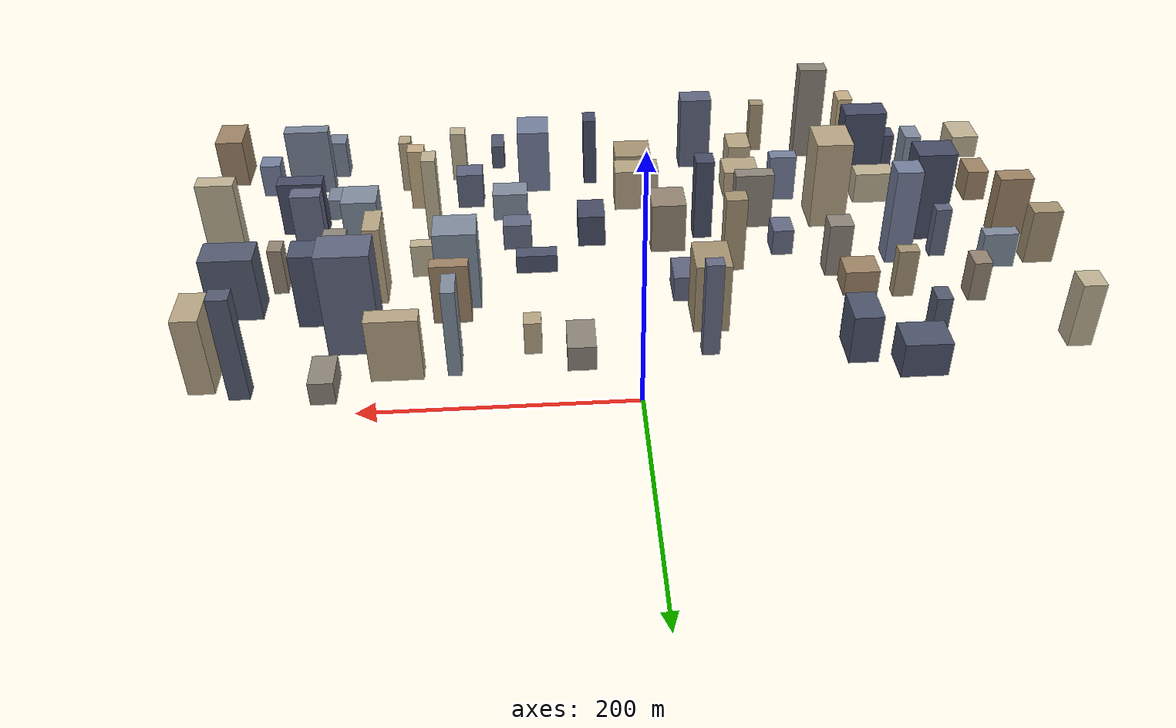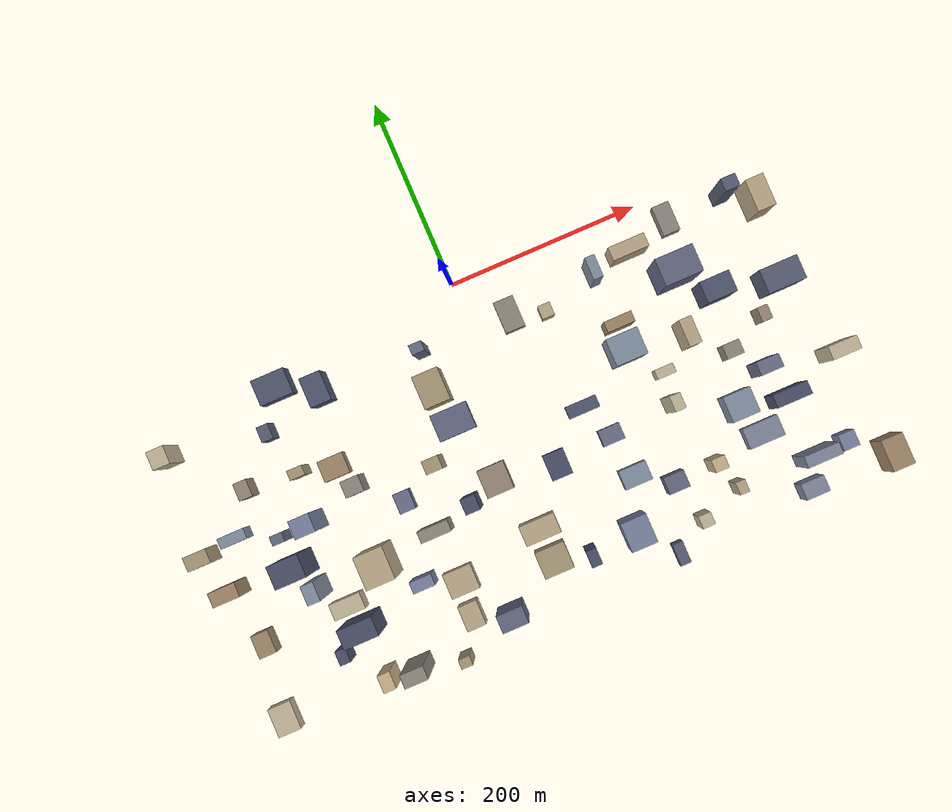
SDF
<sdf version="1.9">
 <model name="city_buildings">
  <static>true</static>
  <model name="b1">
   <static>true</static>
   <pose>-67.2 -209.9 36.0 0 0 0</pose>
   <link name="link">
    <collision name="c"><geometry><box><size>15 16 72</size></box></geometry></collision>
    <visual name="v">
     <geometry><box><size>15 16 72</size></box></geometry>
     <material>
      <ambient>0.28 0.30 0.40 1</ambient>
      <diffuse>0.28 0.30 0.40 1</diffuse>
      <specular>0.62 0.64 0.68 1</specular>
     </material>
    </visual>
   </link>
  </model>
  <model name="b4">
   <static>true</static>
   <pose>253.0 -201.2 28.8 0 0 0</pose>
   <link name="link">
    <collision name="c"><geometry><box><size>24 14 58</size></box></geometry></collision>
    <visual name="v">
     <geometry><box><size>24 14 58</size></box></geometry>
     <material>
      <ambient>0.40 0.42 0.52 1</ambient>
      <diffuse>0.40 0.42 0.52 1</diffuse>
      <specular>0.50 0.52 0.56 1</specular>
     </material>
    </visual>
   </link>
  </model>
  <model name="b6">
   <static>true</static>
   <pose>40.6 -52.4 10.5 0 0 0</pose>
   <link name="link">
    <collision name="c"><geometry><box><size>21 33 21</size></box></geometry></collision>
    <visual name="v">
     <geometry><box><size>21 33 21</size></box></geometry>
     <material>
      <ambient>0.55 0.52 0.48 1</ambient>
      <diffuse>0.55 0.52 0.48 1</diffuse>
      <specular>0.18 0.18 0.16 1</specular>
     </material>
    </visual>
   </link>
  </model>
  <model name="b8">
   <static>true</static>
   <pose>173.3 -40.8 26.4 0 0 0</pose>
   <link name="link">
    <collision name="c"><geometry><box><size>38 14 53</size></box></geometry></collision>
    <visual name="v">
     <geometry><box><size>38 14 53</size></box></geometry>
     <material>
      <ambient>0.72 0.65 0.52 1</ambient>
      <diffuse>0.72 0.65 0.52 1</diffuse>
      <specular>0.12 0.10 0.08 1</specular>
     </material>
    </visual>
   </link>
  </model>
  <model name="b9">
   <static>true</static>
   <pose>-324.1 -333.7 10.5 0 0 0</pose>
   <link name="link">
    <collision name="c"><geometry><box><size>24 30 21</size></box></geometry></collision>
    <visual name="v">
     <geometry><box><size>24 30 21</size></box></geometry>
     <material>
      <ambient>0.75 0.70 0.58 1</ambient>
      <diffuse>0.75 0.70 0.58 1</diffuse>
      <specular>0.12 0.11 0.09 1</specular>
     </material>
    </visual>
   </link>
  </model>
  <model name="b10">
   <static>true</static>
   <pose>92.4 -250.0 12.6 0 0 0</pose>
   <link name="link">
    <collision name="c"><geometry><box><size>29 20 25</size></box></geometry></collision>
    <visual name="v">
     <geometry><box><size>29 20 25</size></box></geometry>
     <material>
      <ambient>0.50 0.55 0.62 1</ambient>
      <diffuse>0.50 0.55 0.62 1</diffuse>
      <specular>0.45 0.48 0.52 1</specular>
     </material>
    </visual>
   </link>
  </model>
  <model name="b12">
   <static>true</static>
   <pose>227.6 -261.6 9.6 0 0 0</pose>
   <link name="link">
    <collision name="c"><geometry><box><size>38 22 19</size></box></geometry></collision>
    <visual name="v">
     <geometry><box><size>38 22 19</size></box></geometry>
     <material>
      <ambient>0.48 0.52 0.60 1</ambient>
      <diffuse>0.48 0.52 0.60 1</diffuse>
      <specular>0.50 0.52 0.55 1</specular>
     </material>
    </visual>
   </link>
  </model>
  <model name="b13">
   <static>true</static>
   <pose>75.6 -64.2 14.0 0 0 0</pose>
   <link name="link">
    <collision name="c"><geometry><box><size>13 14 28</size></box></geometry></collision>
    <visual name="v">
     <geometry><box><size>13 14 28</size></box></geometry>
     <material>
      <ambient>0.72 0.65 0.52 1</ambient>
      <diffuse>0.72 0.65 0.52 1</diffuse>
      <specular>0.12 0.10 0.08 1</specular>
     </material>
    </visual>
   </link>
  </model>
  <model name="b15">
   <static>true</static>
   <pose>-299.3 -148.6 15.6 0 0 0</pose>
   <link name="link">
    <collision name="c"><geometry><box><size>28 11 31</size></box></geometry></collision>
    <visual name="v">
     <geometry><box><size>28 11 31</size></box></geometry>
     <material>
      <ambient>0.50 0.55 0.62 1</ambient>
      <diffuse>0.50 0.55 0.62 1</diffuse>
      <specular>0.45 0.48 0.52 1</specular>
     </material>
    </visual>
   </link>
  </model>
  <model name="b18">
   <static>true</static>
   <pose>131.5 -130.2 34.2 0 0 0</pose>
   <link name="link">
    <collision name="c"><geometry><box><size>33 28 68</size></box></geometry></collision>
    <visual name="v">
     <geometry><box><size>33 28 68</size></box></geometry>
     <material>
      <ambient>0.50 0.55 0.62 1</ambient>
      <diffuse>0.50 0.55 0.62 1</diffuse>
      <specular>0.45 0.48 0.52 1</specular>
     </material>
    </visual>
   </link>
  </model>
  <model name="b20">
   <static>true</static>
   <pose>-16.0 -260.9 18.4 0 0 0</pose>
   <link name="link">
    <collision name="c"><geometry><box><size>37 21 37</size></box></geometry></collision>
    <visual name="v">
     <geometry><box><size>37 21 37</size></box></geometry>
     <material>
      <ambient>0.72 0.65 0.52 1</ambient>
      <diffuse>0.72 0.65 0.52 1</diffuse>
      <specular>0.12 0.10 0.08 1</specular>
     </material>
    </visual>
   </link>
  </model>
  <model name="b22">
   <static>true</static>
   <pose>-213.9 -114.2 20.8 0 0 0</pose>
   <link name="link">
    <collision name="c"><geometry><box><size>16 10 42</size></box></geometry></collision>
    <visual name="v">
     <geometry><box><size>16 10 42</size></box></geometry>
     <material>
      <ambient>0.65 0.58 0.45 1</ambient>
      <diffuse>0.65 0.58 0.45 1</diffuse>
      <specular>0.10 0.09 0.07 1</specular>
     </material>
    </visual>
   </link>
  </model>
  <model name="b23">
   <static>true</static>
   <pose>325.3 -214.7 31.5 0 0 0</pose>
   <link name="link">
    <collision name="c"><geometry><box><size>30 14 63</size></box></geometry></collision>
    <visual name="v">
     <geometry><box><size>30 14 63</size></box></geometry>
     <material>
      <ambient>0.75 0.70 0.58 1</ambient>
      <diffuse>0.75 0.70 0.58 1</diffuse>
      <specular>0.12 0.11 0.09 1</specular>
     </material>
    </visual>
   </link>
  </model>
  <model name="b28">
   <static>true</static>
   <pose>-209.8 -335.6 29.3 0 0 0</pose>
   <link name="link">
    <collision name="c"><geometry><box><size>13 18 59</size></box></geometry></collision>
    <visual name="v">
     <geometry><box><size>13 18 59</size></box></geometry>
     <material>
      <ambient>0.78 0.68 0.52 1</ambient>
      <diffuse>0.78 0.68 0.52 1</diffuse>
      <specular>0.10 0.09 0.07 1</specular>
     </material>
    </visual>
   </link>
  </model>
  <model name="b29">
   <static>true</static>
   <pose>-58.3 -91.5 29.6 0 0 0</pose>
   <link name="link">
    <collision name="c"><geometry><box><size>27 34 59</size></box></geometry></collision>
    <visual name="v">
     <geometry><box><size>27 34 59</size></box></geometry>
     <material>
      <ambient>0.65 0.58 0.45 1</ambient>
      <diffuse>0.65 0.58 0.45 1</diffuse>
      <specular>0.10 0.09 0.07 1</specular>
     </material>
    </visual>
   </link>
  </model>
  <model name="b30">
   <static>true</static>
   <pose>-214.2 -279.9 37.1 0 0 0</pose>
   <link name="link">
    <collision name="c"><geometry><box><size>36 20 74</size></box></geometry></collision>
    <visual name="v">
     <geometry><box><size>36 20 74</size></box></geometry>
     <material>
      <ambient>0.28 0.30 0.40 1</ambient>
      <diffuse>0.28 0.30 0.40 1</diffuse>
      <specular>0.62 0.64 0.68 1</specular>
     </material>
    </visual>
   </link>
  </model>
  <model name="b32">
   <static>true</static>
   <pose>-204.7 -25.8 14.4 0 0 0</pose>
   <link name="link">
    <collision name="c"><geometry><box><size>35 27 29</size></box></geometry></collision>
    <visual name="v">
     <geometry><box><size>35 27 29</size></box></geometry>
     <material>
      <ambient>0.30 0.33 0.42 1</ambient>
      <diffuse>0.30 0.33 0.42 1</diffuse>
      <specular>0.60 0.62 0.65 1</specular>
     </material>
    </visual>
   </link>
  </model>
  <model name="b38">
   <static>true</static>
   <pose>170.4 -270.5 27.9 0 0 0</pose>
   <link name="link">
    <collision name="c"><geometry><box><size>14 13 56</size></box></geometry></collision>
    <visual name="v">
     <geometry><box><size>14 13 56</size></box></geometry>
     <material>
      <ambient>0.78 0.68 0.52 1</ambient>
      <diffuse>0.78 0.68 0.52 1</diffuse>
      <specular>0.10 0.09 0.07 1</specular>
     </material>
    </visual>
   </link>
  </model>
  <model name="b40">
   <static>true</static>
   <pose>-111.9 -313.0 14.5 0 0 0</pose>
   <link name="link">
    <collision name="c"><geometry><box><size>20 26 29</size></box></geometry></collision>
    <visual name="v">
     <geometry><box><size>20 26 29</size></box></geometry>
     <material>
      <ambient>0.72 0.65 0.52 1</ambient>
      <diffuse>0.72 0.65 0.52 1</diffuse>
      <specular>0.12 0.10 0.08 1</specular>
     </material>
    </visual>
   </link>
  </model>
  <model name="b42">
   <static>true</static>
   <pose>263.5 -237.0 24.1 0 0 0</pose>
   <link name="link">
    <collision name="c"><geometry><box><size>37 14 48</size></box></geometry></collision>
    <visual name="v">
     <geometry><box><size>37 14 48</size></box></geometry>
     <material>
      <ambient>0.28 0.30 0.40 1</ambient>
      <diffuse>0.28 0.30 0.40 1</diffuse>
      <specular>0.62 0.64 0.68 1</specular>
     </material>
    </visual>
   </link>
  </model>
  <model name="b43">
   <static>true</static>
   <pose>-143.0 -263.5 20.8 0 0 0</pose>
   <link name="link">
    <collision name="c"><geometry><box><size>23 12 42</size></box></geometry></collision>
    <visual name="v">
     <geometry><box><size>23 12 42</size></box></geometry>
     <material>
      <ambient>0.46 0.50 0.62 1</ambient>
      <diffuse>0.46 0.50 0.62 1</diffuse>
      <specular>0.48 0.50 0.55 1</specular>
     </material>
    </visual>
   </link>
  </model>
  <model name="b44">
   <static>true</static>
   <pose>-86.3 -160.5 32.8 0 0 0</pose>
   <link name="link">
    <collision name="c"><geometry><box><size>17 14 66</size></box></geometry></collision>
    <visual name="v">
     <geometry><box><size>17 14 66</size></box></geometry>
     <material>
      <ambient>0.65 0.58 0.45 1</ambient>
      <diffuse>0.65 0.58 0.45 1</diffuse>
      <specular>0.10 0.09 0.07 1</specular>
     </material>
    </visual>
   </link>
  </model>
  <model name="b45">
   <static>true</static>
   <pose>-228.1 -65.6 17.2 0 0 0</pose>
   <link name="link">
    <collision name="c"><geometry><box><size>12 16 34</size></box></geometry></collision>
    <visual name="v">
     <geometry><box><size>12 16 34</size></box></geometry>
     <material>
      <ambient>0.33 0.36 0.44 1</ambient>
      <diffuse>0.33 0.36 0.44 1</diffuse>
      <specular>0.55 0.58 0.62 1</specular>
     </material>
    </visual>
   </link>
  </model>
  <model name="b52">
   <static>true</static>
   <pose>-180.9 -123.2 11.1 0 0 0</pose>
   <link name="link">
    <collision name="c"><geometry><box><size>27 22 22</size></box></geometry></collision>
    <visual name="v">
     <geometry><box><size>27 22 22</size></box></geometry>
     <material>
      <ambient>0.62 0.52 0.40 1</ambient>
      <diffuse>0.62 0.52 0.40 1</diffuse>
      <specular>0.12 0.10 0.08 1</specular>
     </material>
    </visual>
   </link>
  </model>
  <model name="b53">
   <static>true</static>
   <pose>310.3 -44.3 32.4 0 0 0</pose>
   <link name="link">
    <collision name="c"><geometry><box><size>19 33 65</size></box></geometry></collision>
    <visual name="v">
     <geometry><box><size>19 33 65</size></box></geometry>
     <material>
      <ambient>0.72 0.65 0.52 1</ambient>
      <diffuse>0.72 0.65 0.52 1</diffuse>
      <specular>0.12 0.10 0.08 1</specular>
     </material>
    </visual>
   </link>
  </model>
  <model name="b55">
   <static>true</static>
   <pose>-270.1 -108.8 17.3 0 0 0</pose>
   <link name="link">
    <collision name="c"><geometry><box><size>14 18 35</size></box></geometry></collision>
    <visual name="v">
     <geometry><box><size>14 18 35</size></box></geometry>
     <material>
      <ambient>0.58 0.52 0.45 1</ambient>
      <diffuse>0.58 0.52 0.45 1</diffuse>
      <specular>0.14 0.12 0.10 1</specular>
     </material>
    </visual>
   </link>
  </model>
  <model name="b57">
   <static>true</static>
   <pose>-242.6 -298.2 20.4 0 0 0</pose>
   <link name="link">
    <collision name="c"><geometry><box><size>11 15 41</size></box></geometry></collision>
    <visual name="v">
     <geometry><box><size>11 15 41</size></box></geometry>
     <material>
      <ambient>0.28 0.30 0.40 1</ambient>
      <diffuse>0.28 0.30 0.40 1</diffuse>
      <specular>0.62 0.64 0.68 1</specular>
     </material>
    </visual>
   </link>
  </model>
  <model name="b58">
   <static>true</static>
   <pose>182.4 -300.7 23.8 0 0 0</pose>
   <link name="link">
    <collision name="c"><geometry><box><size>10 13 48</size></box></geometry></collision>
    <visual name="v">
     <geometry><box><size>10 13 48</size></box></geometry>
     <material>
      <ambient>0.70 0.64 0.52 1</ambient>
      <diffuse>0.70 0.64 0.52 1</diffuse>
      <specular>0.13 0.11 0.09 1</specular>
     </material>
    </visual>
   </link>
  </model>
  <model name="b59">
   <static>true</static>
   <pose>21.8 -304.9 30.8 0 0 0</pose>
   <link name="link">
    <collision name="c"><geometry><box><size>11 17 62</size></box></geometry></collision>
    <visual name="v">
     <geometry><box><size>11 17 62</size></box></geometry>
     <material>
      <ambient>0.28 0.30 0.40 1</ambient>
      <diffuse>0.28 0.30 0.40 1</diffuse>
      <specular>0.62 0.64 0.68 1</specular>
     </material>
    </visual>
   </link>
  </model>
  <model name="b61">
   <static>true</static>
   <pose>71.3 -166.7 8.2 0 0 0</pose>
   <link name="link">
    <collision name="c"><geometry><box><size>33 13 16</size></box></geometry></collision>
    <visual name="v">
     <geometry><box><size>33 13 16</size></box></geometry>
     <material>
      <ambient>0.30 0.33 0.42 1</ambient>
      <diffuse>0.30 0.33 0.42 1</diffuse>
      <specular>0.60 0.62 0.65 1</specular>
     </material>
    </visual>
   </link>
  </model>
  <model name="b62">
   <static>true</static>
   <pose>300.6 -125.4 27.5 0 0 0</pose>
   <link name="link">
    <collision name="c"><geometry><box><size>40 25 55</size></box></geometry></collision>
    <visual name="v">
     <geometry><box><size>40 25 55</size></box></geometry>
     <material>
      <ambient>0.33 0.36 0.44 1</ambient>
      <diffuse>0.33 0.36 0.44 1</diffuse>
      <specular>0.55 0.58 0.62 1</specular>
     </material>
    </visual>
   </link>
  </model>
  <model name="b63">
   <static>true</static>
   <pose>137.6 -316.7 22.9 0 0 0</pose>
   <link name="link">
    <collision name="c"><geometry><box><size>13 13 46</size></box></geometry></collision>
    <visual name="v">
     <geometry><box><size>13 13 46</size></box></geometry>
     <material>
      <ambient>0.75 0.70 0.58 1</ambient>
      <diffuse>0.75 0.70 0.58 1</diffuse>
      <specular>0.12 0.11 0.09 1</specular>
     </material>
    </visual>
   </link>
  </model>
  <model name="b66">
   <static>true</static>
   <pose>-221.8 -255.6 14.1 0 0 0</pose>
   <link name="link">
    <collision name="c"><geometry><box><size>33 17 28</size></box></geometry></collision>
    <visual name="v">
     <geometry><box><size>33 17 28</size></box></geometry>
     <material>
      <ambient>0.75 0.70 0.58 1</ambient>
      <diffuse>0.75 0.70 0.58 1</diffuse>
      <specular>0.12 0.11 0.09 1</specular>
     </material>
    </visual>
   </link>
  </model>
  <model name="b70">
   <static>true</static>
   <pose>229.9 -173.4 18.1 0 0 0</pose>
   <link name="link">
    <collision name="c"><geometry><box><size>18 15 36</size></box></geometry></collision>
    <visual name="v">
     <geometry><box><size>18 15 36</size></box></geometry>
     <material>
      <ambient>0.55 0.52 0.48 1</ambient>
      <diffuse>0.55 0.52 0.48 1</diffuse>
      <specular>0.18 0.18 0.16 1</specular>
     </material>
    </visual>
   </link>
  </model>
  <model name="b71">
   <static>true</static>
   <pose>71.3 -300.6 29.0 0 0 0</pose>
   <link name="link">
    <collision name="c"><geometry><box><size>27 30 58</size></box></geometry></collision>
    <visual name="v">
     <geometry><box><size>27 30 58</size></box></geometry>
     <material>
      <ambient>0.46 0.50 0.62 1</ambient>
      <diffuse>0.46 0.50 0.62 1</diffuse>
      <specular>0.48 0.50 0.55 1</specular>
     </material>
    </visual>
   </link>
  </model>
  <model name="b72">
   <static>true</static>
   <pose>-54.5 -52.0 40.1 0 0 0</pose>
   <link name="link">
    <collision name="c"><geometry><box><size>13 10 80</size></box></geometry></collision>
    <visual name="v">
     <geometry><box><size>13 10 80</size></box></geometry>
     <material>
      <ambient>0.40 0.42 0.52 1</ambient>
      <diffuse>0.40 0.42 0.52 1</diffuse>
      <specular>0.50 0.52 0.56 1</specular>
     </material>
    </visual>
   </link>
  </model>
  <model name="b73">
   <static>true</static>
   <pose>193.7 -140.9 34.1 0 0 0</pose>
   <link name="link">
    <collision name="c"><geometry><box><size>13 28 68</size></box></geometry></collision>
    <visual name="v">
     <geometry><box><size>13 28 68</size></box></geometry>
     <material>
      <ambient>0.72 0.65 0.52 1</ambient>
      <diffuse>0.72 0.65 0.52 1</diffuse>
      <specular>0.12 0.10 0.08 1</specular>
     </material>
    </visual>
   </link>
  </model>
  <model name="b78">
   <static>true</static>
   <pose>-239.7 -227.1 40.0 0 0 0</pose>
   <link name="link">
    <collision name="c"><geometry><box><size>13 20 80</size></box></geometry></collision>
    <visual name="v">
     <geometry><box><size>13 20 80</size></box></geometry>
     <material>
      <ambient>0.50 0.55 0.62 1</ambient>
      <diffuse>0.50 0.55 0.62 1</diffuse>
      <specular>0.45 0.48 0.52 1</specular>
     </material>
    </visual>
   </link>
  </model>
  <model name="b80">
   <static>true</static>
   <pose>-255.8 -166.8 22.1 0 0 0</pose>
   <link name="link">
    <collision name="c"><geometry><box><size>13 10 44</size></box></geometry></collision>
    <visual name="v">
     <geometry><box><size>13 10 44</size></box></geometry>
     <material>
      <ambient>0.38 0.40 0.50 1</ambient>
      <diffuse>0.38 0.40 0.50 1</diffuse>
      <specular>0.52 0.54 0.58 1</specular>
     </material>
    </visual>
   </link>
  </model>
  <model name="b81">
   <static>true</static>
   <pose>250.0 -331.1 16.8 0 0 0</pose>
   <link name="link">
    <collision name="c"><geometry><box><size>25 17 34</size></box></geometry></collision>
    <visual name="v">
     <geometry><box><size>25 17 34</size></box></geometry>
     <material>
      <ambient>0.48 0.52 0.60 1</ambient>
      <diffuse>0.48 0.52 0.60 1</diffuse>
      <specular>0.50 0.52 0.55 1</specular>
     </material>
    </visual>
   </link>
  </model>
  <model name="b82">
   <static>true</static>
   <pose>-164.4 -46.1 20.5 0 0 0</pose>
   <link name="link">
    <collision name="c"><geometry><box><size>22 31 41</size></box></geometry></collision>
    <visual name="v">
     <geometry><box><size>22 31 41</size></box></geometry>
     <material>
      <ambient>0.30 0.33 0.42 1</ambient>
      <diffuse>0.30 0.33 0.42 1</diffuse>
      <specular>0.60 0.62 0.65 1</specular>
     </material>
    </visual>
   </link>
  </model>
  <model name="b83">
   <static>true</static>
   <pose>152.8 -198.4 44.4 0 0 0</pose>
   <link name="link">
    <collision name="c"><geometry><box><size>11 16 89</size></box></geometry></collision>
    <visual name="v">
     <geometry><box><size>11 16 89</size></box></geometry>
     <material>
      <ambient>0.75 0.70 0.58 1</ambient>
      <diffuse>0.75 0.70 0.58 1</diffuse>
      <specular>0.12 0.11 0.09 1</specular>
     </material>
    </visual>
   </link>
  </model>
  <model name="b86">
   <static>true</static>
   <pose>25.4 -209.4 14.2 0 0 0</pose>
   <link name="link">
    <collision name="c"><geometry><box><size>22 27 28</size></box></geometry></collision>
    <visual name="v">
     <geometry><box><size>22 27 28</size></box></geometry>
     <material>
      <ambient>0.28 0.30 0.40 1</ambient>
      <diffuse>0.28 0.30 0.40 1</diffuse>
      <specular>0.62 0.64 0.68 1</specular>
     </material>
    </visual>
   </link>
  </model>
  <model name="b87">
   <static>true</static>
   <pose>-15.0 -294.4 17.3 0 0 0</pose>
   <link name="link">
    <collision name="c"><geometry><box><size>31 28 35</size></box></geometry></collision>
    <visual name="v">
     <geometry><box><size>31 28 35</size></box></geometry>
     <material>
      <ambient>0.65 0.58 0.45 1</ambient>
      <diffuse>0.65 0.58 0.45 1</diffuse>
      <specular>0.10 0.09 0.07 1</specular>
     </material>
    </visual>
   </link>
  </model>
  <model name="b88">
   <static>true</static>
   <pose>-174.9 -229.0 39.0 0 0 0</pose>
   <link name="link">
    <collision name="c"><geometry><box><size>30 34 78</size></box></geometry></collision>
    <visual name="v">
     <geometry><box><size>30 34 78</size></box></geometry>
     <material>
      <ambient>0.72 0.65 0.52 1</ambient>
      <diffuse>0.72 0.65 0.52 1</diffuse>
      <specular>0.12 0.10 0.08 1</specular>
     </material>
    </visual>
   </link>
  </model>
  <model name="b90">
   <static>true</static>
   <pose>-53.5 -128.6 10.9 0 0 0</pose>
   <link name="link">
    <collision name="c"><geometry><box><size>39 28 22</size></box></geometry></collision>
    <visual name="v">
     <geometry><box><size>39 28 22</size></box></geometry>
     <material>
      <ambient>0.38 0.40 0.50 1</ambient>
      <diffuse>0.38 0.40 0.50 1</diffuse>
      <specular>0.52 0.54 0.58 1</specular>
     </material>
    </visual>
   </link>
  </model>
  <model name="b91">
   <static>true</static>
   <pose>206.3 -79.3 43.5 0 0 0</pose>
   <link name="link">
    <collision name="c"><geometry><box><size>39 28 87</size></box></geometry></collision>
    <visual name="v">
     <geometry><box><size>39 28 87</size></box></geometry>
     <material>
      <ambient>0.38 0.40 0.50 1</ambient>
      <diffuse>0.38 0.40 0.50 1</diffuse>
      <specular>0.52 0.54 0.58 1</specular>
     </material>
    </visual>
   </link>
  </model>
  <model name="b92">
   <static>true</static>
   <pose>-111.2 -220.8 25.2 0 0 0</pose>
   <link name="link">
    <collision name="c"><geometry><box><size>32 12 50</size></box></geometry></collision>
    <visual name="v">
     <geometry><box><size>32 12 50</size></box></geometry>
     <material>
      <ambient>0.55 0.52 0.48 1</ambient>
      <diffuse>0.55 0.52 0.48 1</diffuse>
      <specular>0.18 0.18 0.16 1</specular>
     </material>
    </visual>
   </link>
  </model>
  <model name="b93">
   <static>true</static>
   <pose>160.4 -166.7 14.3 0 0 0</pose>
   <link name="link">
    <collision name="c"><geometry><box><size>20 10 29</size></box></geometry></collision>
    <visual name="v">
     <geometry><box><size>20 10 29</size></box></geometry>
     <material>
      <ambient>0.75 0.70 0.58 1</ambient>
      <diffuse>0.75 0.70 0.58 1</diffuse>
      <specular>0.12 0.11 0.09 1</specular>
     </material>
    </visual>
   </link>
  </model>
  <model name="b97">
   <static>true</static>
   <pose>-322.7 -196.2 26.9 0 0 0</pose>
   <link name="link">
    <collision name="c"><geometry><box><size>28 15 54</size></box></geometry></collision>
    <visual name="v">
     <geometry><box><size>28 15 54</size></box></geometry>
     <material>
      <ambient>0.62 0.52 0.40 1</ambient>
      <diffuse>0.62 0.52 0.40 1</diffuse>
      <specular>0.12 0.10 0.08 1</specular>
     </material>
    </visual>
   </link>
  </model>
  <model name="b98">
   <static>true</static>
   <pose>-221.3 -165.0 41.8 0 0 0</pose>
   <link name="link">
    <collision name="c"><geometry><box><size>21 19 84</size></box></geometry></collision>
    <visual name="v">
     <geometry><box><size>21 19 84</size></box></geometry>
     <material>
      <ambient>0.46 0.50 0.62 1</ambient>
      <diffuse>0.46 0.50 0.62 1</diffuse>
      <specular>0.48 0.50 0.55 1</specular>
     </material>
    </visual>
   </link>
  </model>
  <model name="b99">
   <static>true</static>
   <pose>-179.3 -337.8 43.3 0 0 0</pose>
   <link name="link">
    <collision name="c"><geometry><box><size>24 14 87</size></box></geometry></collision>
    <visual name="v">
     <geometry><box><size>24 14 87</size></box></geometry>
     <material>
      <ambient>0.55 0.52 0.48 1</ambient>
      <diffuse>0.55 0.52 0.48 1</diffuse>
      <specular>0.18 0.18 0.16 1</specular>
     </material>
    </visual>
   </link>
  </model>
  <model name="b100">
   <static>true</static>
   <pose>236.5 -111.9 32.0 0 0 0</pose>
   <link name="link">
    <collision name="c"><geometry><box><size>31 22 64</size></box></geometry></collision>
    <visual name="v">
     <geometry><box><size>31 22 64</size></box></geometry>
     <material>
      <ambient>0.30 0.33 0.42 1</ambient>
      <diffuse>0.30 0.33 0.42 1</diffuse>
      <specular>0.60 0.62 0.65 1</specular>
     </material>
    </visual>
   </link>
  </model>
  <model name="b101">
   <static>true</static>
   <pose>103.8 -339.8 10.9 0 0 0</pose>
   <link name="link">
    <collision name="c"><geometry><box><size>11 23 22</size></box></geometry></collision>
    <visual name="v">
     <geometry><box><size>11 23 22</size></box></geometry>
     <material>
      <ambient>0.33 0.36 0.44 1</ambient>
      <diffuse>0.33 0.36 0.44 1</diffuse>
      <specular>0.55 0.58 0.62 1</specular>
     </material>
    </visual>
   </link>
  </model>
  <model name="b102">
   <static>true</static>
   <pose>336.7 -330.2 21.5 0 0 0</pose>
   <link name="link">
    <collision name="c"><geometry><box><size>23 33 43</size></box></geometry></collision>
    <visual name="v">
     <geometry><box><size>23 33 43</size></box></geometry>
     <material>
      <ambient>0.62 0.52 0.40 1</ambient>
      <diffuse>0.62 0.52 0.40 1</diffuse>
      <specular>0.12 0.10 0.08 1</specular>
     </material>
    </visual>
   </link>
  </model>
  <model name="b104">
   <static>true</static>
   <pose>126.6 -272.0 15.8 0 0 0</pose>
   <link name="link">
    <collision name="c"><geometry><box><size>22 18 32</size></box></geometry></collision>
    <visual name="v">
     <geometry><box><size>22 18 32</size></box></geometry>
     <material>
      <ambient>0.38 0.40 0.50 1</ambient>
      <diffuse>0.38 0.40 0.50 1</diffuse>
      <specular>0.52 0.54 0.58 1</specular>
     </material>
    </visual>
   </link>
  </model>
  <model name="b105">
   <static>true</static>
   <pose>-312.4 -257.1 13.8 0 0 0</pose>
   <link name="link">
    <collision name="c"><geometry><box><size>18 24 28</size></box></geometry></collision>
    <visual name="v">
     <geometry><box><size>18 24 28</size></box></geometry>
     <material>
      <ambient>0.62 0.52 0.40 1</ambient>
      <diffuse>0.62 0.52 0.40 1</diffuse>
      <specular>0.12 0.10 0.08 1</specular>
     </material>
    </visual>
   </link>
  </model>
  <model name="b107">
   <static>true</static>
   <pose>-129.5 -182.6 11.7 0 0 0</pose>
   <link name="link">
    <collision name="c"><geometry><box><size>17 21 23</size></box></geometry></collision>
    <visual name="v">
     <geometry><box><size>17 21 23</size></box></geometry>
     <material>
      <ambient>0.40 0.42 0.52 1</ambient>
      <diffuse>0.40 0.42 0.52 1</diffuse>
      <specular>0.50 0.52 0.56 1</specular>
     </material>
    </visual>
   </link>
  </model>
  <model name="b108">
   <static>true</static>
   <pose>215.1 -226.8 19.4 0 0 0</pose>
   <link name="link">
    <collision name="c"><geometry><box><size>29 27 39</size></box></geometry></collision>
    <visual name="v">
     <geometry><box><size>29 27 39</size></box></geometry>
     <material>
      <ambient>0.50 0.55 0.62 1</ambient>
      <diffuse>0.50 0.55 0.62 1</diffuse>
      <specular>0.45 0.48 0.52 1</specular>
     </material>
    </visual>
   </link>
  </model>
  <model name="b109">
   <static>true</static>
   <pose>272.1 -153.0 20.2 0 0 0</pose>
   <link name="link">
    <collision name="c"><geometry><box><size>11 15 40</size></box></geometry></collision>
    <visual name="v">
     <geometry><box><size>11 15 40</size></box></geometry>
     <material>
      <ambient>0.58 0.52 0.45 1</ambient>
      <diffuse>0.58 0.52 0.45 1</diffuse>
      <specular>0.14 0.12 0.10 1</specular>
     </material>
    </visual>
   </link>
  </model>
  <model name="b115">
   <static>true</static>
   <pose>265.2 -302.2 30.1 0 0 0</pose>
   <link name="link">
    <collision name="c"><geometry><box><size>37 12 60</size></box></geometry></collision>
    <visual name="v">
     <geometry><box><size>37 12 60</size></box></geometry>
     <material>
      <ambient>0.48 0.52 0.60 1</ambient>
      <diffuse>0.48 0.52 0.60 1</diffuse>
      <specular>0.50 0.52 0.55 1</specular>
     </material>
    </visual>
   </link>
  </model>
  <model name="b120">
   <static>true</static>
   <pose>-108.7 -278.0 12.0 0 0 0</pose>
   <link name="link">
    <collision name="c"><geometry><box><size>30 26 24</size></box></geometry></collision>
    <visual name="v">
     <geometry><box><size>30 26 24</size></box></geometry>
     <material>
      <ambient>0.72 0.65 0.52 1</ambient>
      <diffuse>0.72 0.65 0.52 1</diffuse>
      <specular>0.12 0.10 0.08 1</specular>
     </material>
    </visual>
   </link>
  </model>
  <model name="b121">
   <static>true</static>
   <pose>223.2 -26.4 9.6 0 0 0</pose>
   <link name="link">
    <collision name="c"><geometry><box><size>18 31 19</size></box></geometry></collision>
    <visual name="v">
     <geometry><box><size>18 31 19</size></box></geometry>
     <material>
      <ambient>0.55 0.52 0.48 1</ambient>
      <diffuse>0.55 0.52 0.48 1</diffuse>
      <specular>0.18 0.18 0.16 1</specular>
     </material>
    </visual>
   </link>
  </model>
  <model name="b122">
   <static>true</static>
   <pose>86.5 -203.5 11.5 0 0 0</pose>
   <link name="link">
    <collision name="c"><geometry><box><size>23 17 23</size></box></geometry></collision>
    <visual name="v">
     <geometry><box><size>23 17 23</size></box></geometry>
     <material>
      <ambient>0.40 0.42 0.52 1</ambient>
      <diffuse>0.40 0.42 0.52 1</diffuse>
      <specular>0.50 0.52 0.56 1</specular>
     </material>
    </visual>
   </link>
  </model>
  <model name="b123">
   <static>true</static>
   <pose>300.0 -301.7 15.0 0 0 0</pose>
   <link name="link">
    <collision name="c"><geometry><box><size>17 17 30</size></box></geometry></collision>
    <visual name="v">
     <geometry><box><size>17 17 30</size></box></geometry>
     <material>
      <ambient>0.46 0.50 0.62 1</ambient>
      <diffuse>0.46 0.50 0.62 1</diffuse>
      <specular>0.48 0.50 0.55 1</specular>
     </material>
    </visual>
   </link>
  </model>
  <model name="b125">
   <static>true</static>
   <pose>136.1 -104.5 25.9 0 0 0</pose>
   <link name="link">
    <collision name="c"><geometry><box><size>29 11 52</size></box></geometry></collision>
    <visual name="v">
     <geometry><box><size>29 11 52</size></box></geometry>
     <material>
      <ambient>0.62 0.52 0.40 1</ambient>
      <diffuse>0.62 0.52 0.40 1</diffuse>
      <specular>0.12 0.10 0.08 1</specular>
     </material>
    </visual>
   </link>
  </model>
  <model name="b132">
   <static>true</static>
   <pose>-335.1 -154.6 24.1 0 0 0</pose>
   <link name="link">
    <collision name="c"><geometry><box><size>24 15 48</size></box></geometry></collision>
    <visual name="v">
     <geometry><box><size>24 15 48</size></box></geometry>
     <material>
      <ambient>0.65 0.58 0.45 1</ambient>
      <diffuse>0.65 0.58 0.45 1</diffuse>
      <specular>0.10 0.09 0.07 1</specular>
     </material>
    </visual>
   </link>
  </model>
  <model name="b134">
   <static>true</static>
   <pose>132.4 -47.8 36.8 0 0 0</pose>
   <link name="link">
    <collision name="c"><geometry><box><size>10 23 74</size></box></geometry></collision>
    <visual name="v">
     <geometry><box><size>10 23 74</size></box></geometry>
     <material>
      <ambient>0.50 0.55 0.62 1</ambient>
      <diffuse>0.50 0.55 0.62 1</diffuse>
      <specular>0.45 0.48 0.52 1</specular>
     </material>
    </visual>
   </link>
  </model>
  <model name="b137">
   <static>true</static>
   <pose>282.4 -26.3 43.7 0 0 0</pose>
   <link name="link">
    <collision name="c"><geometry><box><size>15 13 87</size></box></geometry></collision>
    <visual name="v">
     <geometry><box><size>15 13 87</size></box></geometry>
     <material>
      <ambient>0.33 0.36 0.44 1</ambient>
      <diffuse>0.33 0.36 0.44 1</diffuse>
      <specular>0.55 0.58 0.62 1</specular>
     </material>
    </visual>
   </link>
  </model>
  <model name="b138">
   <static>true</static>
   <pose>-36.7 -198.1 21.9 0 0 0</pose>
   <link name="link">
    <collision name="c"><geometry><box><size>28 29 44</size></box></geometry></collision>
    <visual name="v">
     <geometry><box><size>28 29 44</size></box></geometry>
     <material>
      <ambient>0.58 0.52 0.45 1</ambient>
      <diffuse>0.58 0.52 0.45 1</diffuse>
      <specular>0.14 0.12 0.10 1</specular>
     </material>
    </visual>
   </link>
  </model>
  <model name="b140">
   <static>true</static>
   <pose>-328.9 -48.3 27.6 0 0 0</pose>
   <link name="link">
    <collision name="c"><geometry><box><size>18 19 55</size></box></geometry></collision>
    <visual name="v">
     <geometry><box><size>18 19 55</size></box></geometry>
     <material>
      <ambient>0.75 0.70 0.58 1</ambient>
      <diffuse>0.75 0.70 0.58 1</diffuse>
      <specular>0.12 0.11 0.09 1</specular>
     </material>
    </visual>
   </link>
  </model>
  <model name="b142">
   <static>true</static>
   <pose>-252.6 -199.0 40.0 0 0 0</pose>
   <link name="link">
    <collision name="c"><geometry><box><size>32 24 80</size></box></geometry></collision>
    <visual name="v">
     <geometry><box><size>32 24 80</size></box></geometry>
     <material>
      <ambient>0.28 0.30 0.40 1</ambient>
      <diffuse>0.28 0.30 0.40 1</diffuse>
      <specular>0.62 0.64 0.68 1</specular>
     </material>
    </visual>
   </link>
  </model>
  <model name="b143">
   <static>true</static>
   <pose>-167.9 -148.5 23.6 0 0 0</pose>
   <link name="link">
    <collision name="c"><geometry><box><size>19 17 47</size></box></geometry></collision>
    <visual name="v">
     <geometry><box><size>19 17 47</size></box></geometry>
     <material>
      <ambient>0.55 0.52 0.48 1</ambient>
      <diffuse>0.55 0.52 0.48 1</diffuse>
      <specular>0.18 0.18 0.16 1</specular>
     </material>
    </visual>
   </link>
  </model>
  <model name="b148">
   <static>true</static>
   <pose>-133.6 -349.9 23.5 0 0 0</pose>
   <link name="link">
    <collision name="c"><geometry><box><size>12 10 47</size></box></geometry></collision>
    <visual name="v">
     <geometry><box><size>12 10 47</size></box></geometry>
     <material>
      <ambient>0.65 0.58 0.45 1</ambient>
      <diffuse>0.65 0.58 0.45 1</diffuse>
      <specular>0.10 0.09 0.07 1</specular>
     </material>
    </visual>
   </link>
  </model>
  <model name="b150">
   <static>true</static>
   <pose>-73.9 -327.5 33.4 0 0 0</pose>
   <link name="link">
    <collision name="c"><geometry><box><size>27 18 67</size></box></geometry></collision>
    <visual name="v">
     <geometry><box><size>27 18 67</size></box></geometry>
     <material>
      <ambient>0.38 0.40 0.50 1</ambient>
      <diffuse>0.38 0.40 0.50 1</diffuse>
      <specular>0.52 0.54 0.58 1</specular>
     </material>
    </visual>
   </link>
  </model>
 </model>
</sdf>
